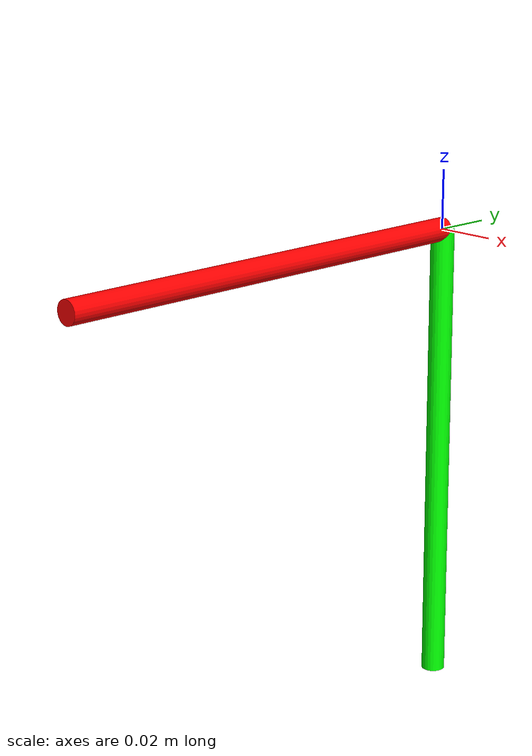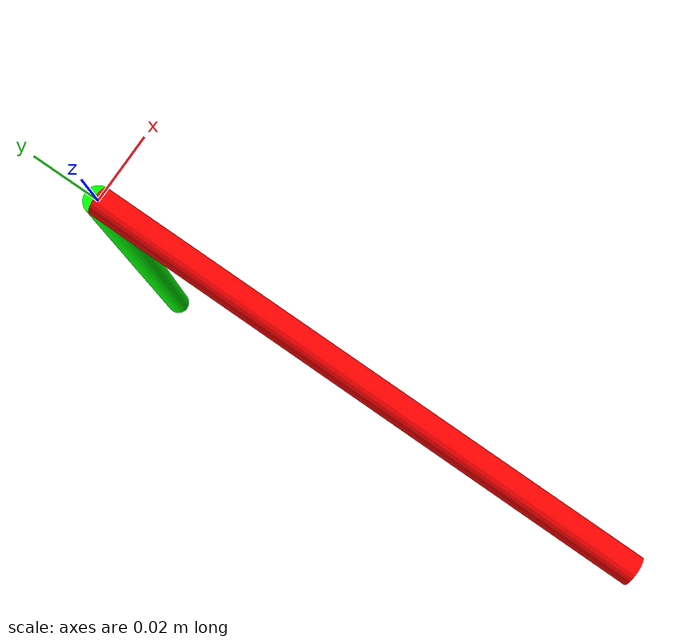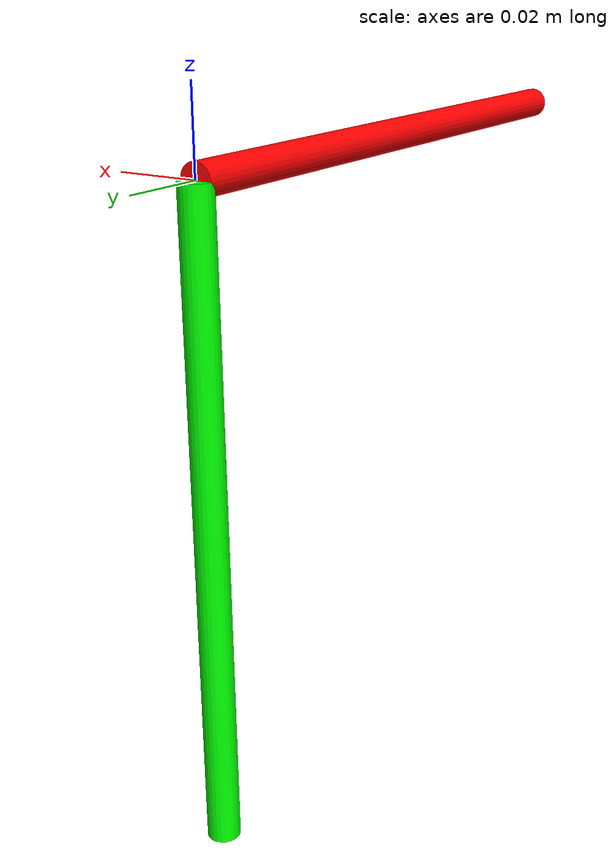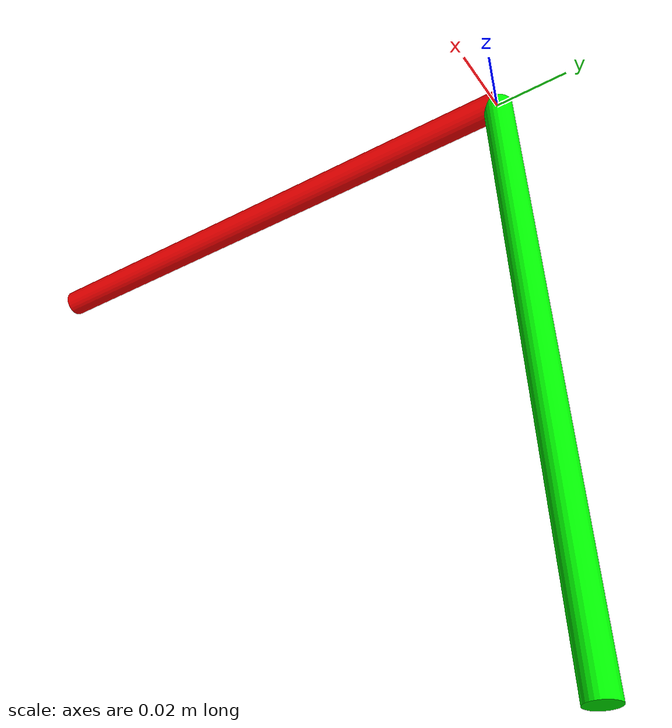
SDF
<?xml version='1.0'?>
<sdf version='1.9'>
  <model name='generic_camera'>
    <pose>0 0 0 0 0 0</pose>
    <self_collide>false</self_collide>
    <static>false</static>
    <link name='camera_link'>
      <inertial>
        <pose>0 0 0 0 0 0</pose>
        <mass>0.050</mass>
        <inertia>
          <ixx>0.00004</ixx>
          <ixy>0</ixy>
          <ixz>0</ixz>
          <iyy>0.00004</iyy>
          <iyz>0</iyz>
          <izz>0.00004</izz>
        </inertia>
      </inertial>

      <!-- VISUAL - CUERPO DE LA CÁMARA                     -->

      <!-- EJES COORDENADOS - MARCO DE REFERENCIA CÁMARA   -->

      <!-- Eje X de la cámara (rojo) = horizontal derecha = -Y mundo -->
      <visual name="axis_x">
        <pose>0 -0.08 0 1.5707963 0 0</pose>
        <geometry>
          <cylinder>
            <radius>0.004</radius>
            <length>0.16</length>
          </cylinder>
        </geometry>
        <material>
          <ambient>1 0 0 1</ambient>
          <diffuse>1 0 0 1</diffuse>
          <emissive>0.8 0 0 1</emissive>
        </material>
      </visual>

      <!-- Eje Y de la cámara (verde) = vertical abajo = -Z mundo -->
      <visual name="axis_y">
        <pose>0 0 -0.08 0 0 0</pose>
        <geometry>
          <cylinder>
            <radius>0.004</radius>
            <length>0.16</length>
          </cylinder>
        </geometry>
        <material>
          <ambient>0 1 0 1</ambient>
          <diffuse>0 1 0 1</diffuse>
          <emissive>0 0.8 0 1</emissive>
        </material>
      </visual>

      <!-- Etiquetas en las puntas de los ejes -->

      <!-- COLISIÓN                                          -->
      <collision name='camera_col'>
        <pose>0 0 0 0 0 0</pose>
        <geometry>
          <cylinder>
            <radius>0.025</radius>
            <length>0.020</length>
          </cylinder>
        </geometry>
      </collision>

      <!-- SENSOR DE CÁMARA - ORIENTACIÓN DEFAULT           -->
      <!-- Sin rotación - orientación default de Gazebo
           Mira en dirección +Z (hacia adelante)
      -->
      <sensor name="camera" type="camera">
        <pose degrees="true">0 0 0 0 0 0</pose>

        <camera>
          <horizontal_fov>1.047</horizontal_fov>
          <image>
            <width>1080</width>
            <height>1080</height>
            <format>R8G8B8</format>
          </image>
          <clip>
            <near>0.1</near>
            <far>100</far>
          </clip>
        </camera>

        <always_on>1</always_on>
        <update_rate>60</update_rate>
        <visualize>false</visualize>
      </sensor>
    </link>
  </model>
</sdf>
